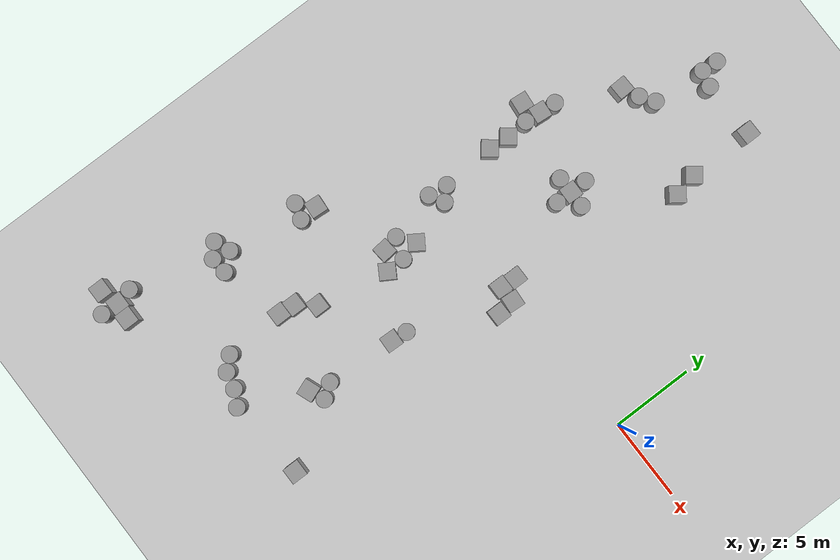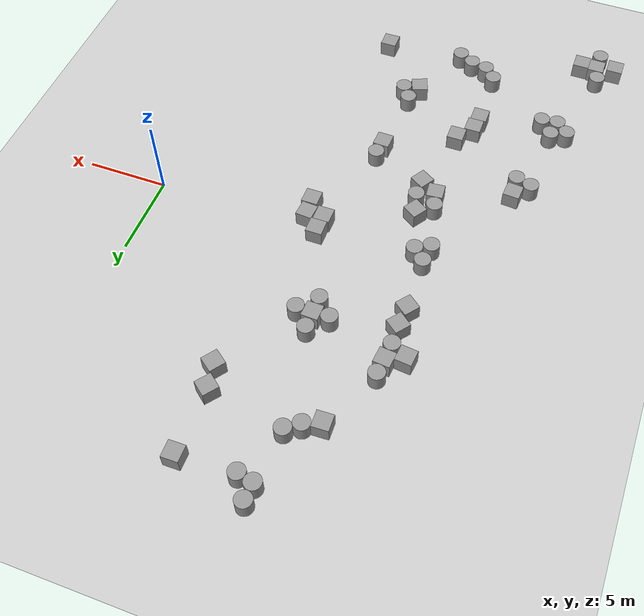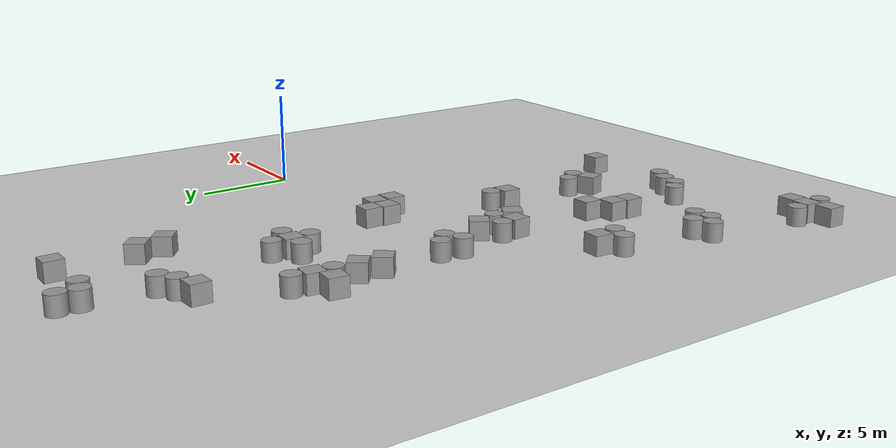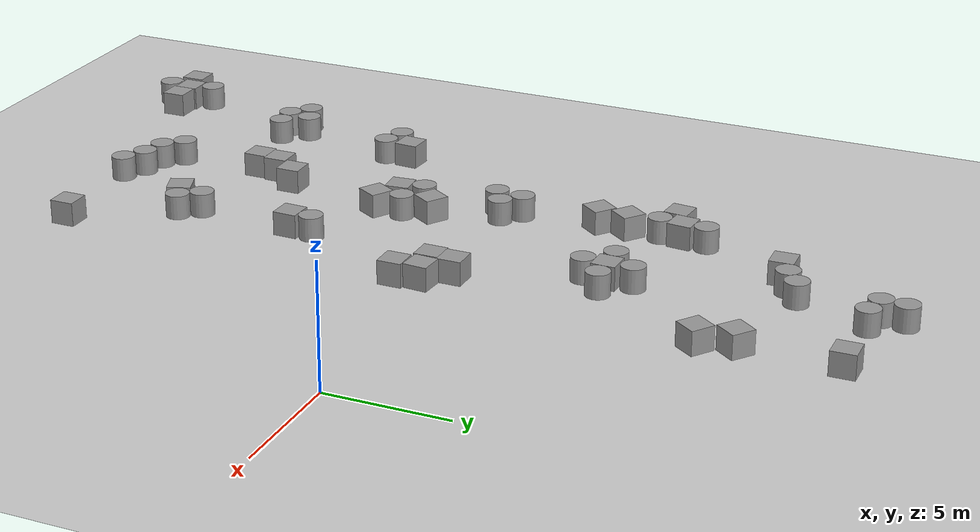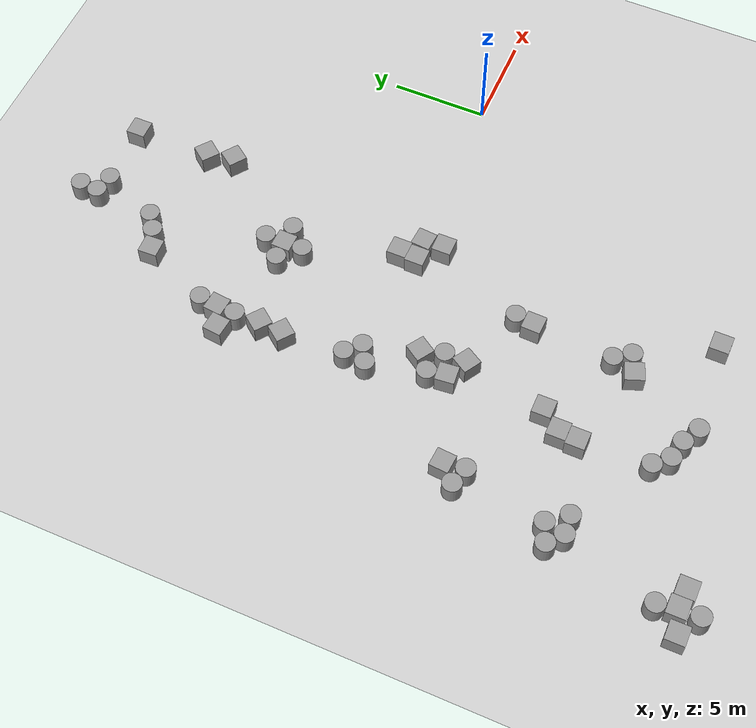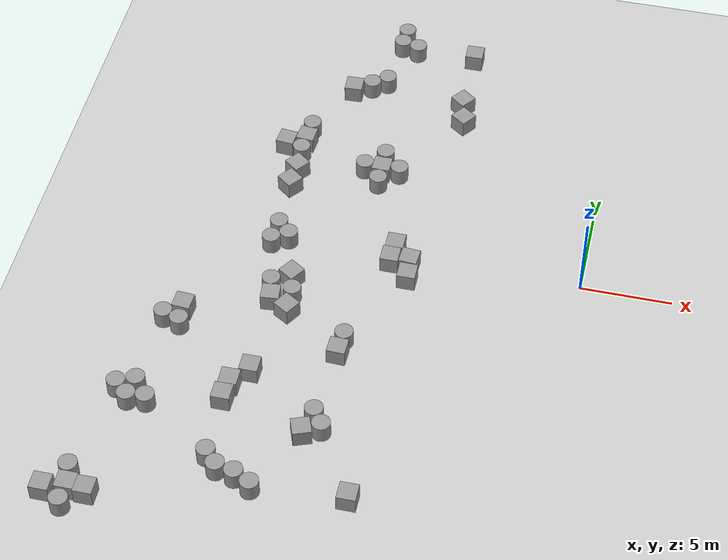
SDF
<sdf version="1.6">
 <world name="default">
  <model name="ground_plane">
   <static>1</static>
   <link name="link">
    <collision name="collision">
     <geometry><plane><normal>0 0 1</normal><size>100 100</size></plane></geometry>
     <surface><friction><ode><mu>100</mu><mu2>50</mu2></ode></friction></surface>
    </collision>
    <visual name="visual">
     <cast_shadows>0</cast_shadows>
     <geometry><plane><normal>0 0 1</normal><size>100 100</size></plane></geometry>
     <material>
      <script><uri>file://media/materials/scripts/gazebo.material</uri><name>Gazebo/Grey</name></script>
     </material>
    </visual>
   </link>
  </model>
  <model name="unit_box_8">
   <pose>-9.3394 -0.54228 0.5 0 0 -0.074039</pose>
   <link name="link">
    <inertial>
     <mass>1</mass>
     <inertia>
      <ixx>0.166667</ixx>
      <ixy>0</ixy>
      <ixz>0</ixz>
      <iyy>0.166667</iyy>
      <iyz>0</iyz>
      <izz>0.166667</izz>
     </inertia>
    </inertial>
    <collision name="collision"><geometry><box><size>1 1 1</size></box></geometry></collision>
    <visual name="visual">
     <geometry><box><size>1 1 1</size></box></geometry>
     <material>
      <script><name>Gazebo/Grey</name><uri>file://media/materials/scripts/gazebo.material</uri></script>
     </material>
    </visual>
   </link>
  </model>
  <model name="unit_box_15">
   <pose>-10.3952 -0.600275 0.5 0 0 -0.001077</pose>
   <link name="link">
    <inertial>
     <mass>1</mass>
     <inertia>
      <ixx>0.166667</ixx>
      <ixy>0</ixy>
      <ixz>0</ixz>
      <iyy>0.166667</iyy>
      <iyz>0</iyz>
      <izz>0.166667</izz>
     </inertia>
    </inertial>
    <collision name="collision"><geometry><box><size>1 1 1</size></box></geometry></collision>
    <visual name="visual">
     <geometry><box><size>1 1 1</size></box></geometry>
     <material>
      <script><name>Gazebo/Grey</name><uri>file://media/materials/scripts/gazebo.material</uri></script>
     </material>
    </visual>
   </link>
  </model>
  <model name="unit_box_19">
   <pose>-18.0601 6.84386 0.5 0 0 -0.095919</pose>
   <link name="link">
    <inertial>
     <mass>1</mass>
     <inertia>
      <ixx>0.166667</ixx>
      <ixy>0</ixy>
      <ixz>0</ixz>
      <iyy>0.166667</iyy>
      <iyz>0</iyz>
      <izz>0.166667</izz>
     </inertia>
    </inertial>
    <collision name="collision"><geometry><box><size>1 1 1</size></box></geometry></collision>
    <visual name="visual">
     <geometry><box><size>1 1 1</size></box></geometry>
     <material>
      <script><name>Gazebo/Grey</name><uri>file://media/materials/scripts/gazebo.material</uri></script>
     </material>
    </visual>
   </link>
  </model>
  <model name="unit_cylinder_16">
   <pose>-11.4365 -12.4394 0.499942 0 0 -0.038077</pose>
   <link name="link">
    <inertial>
     <mass>1</mass>
     <inertia><ixx>0.145833</ixx><ixy>0</ixy><ixz>0</ixz><iyy>0.145833</iyy><iyz>0</iyz><izz>0.125</izz></inertia>
    </inertial>
    <collision name="collision">
     <geometry><cylinder><radius>0.5</radius><length>1</length></cylinder></geometry>
    </collision>
    <visual name="visual">
     <geometry><cylinder><radius>0.5</radius><length>1</length></cylinder></geometry>
     <material>
      <script><name>Gazebo/Grey</name><uri>file://media/materials/scripts/gazebo.material</uri></script>
     </material>
    </visual>
   </link>
  </model>
  <model name="unit_cylinder_17">
   <pose>-16.3151 -3.60972 0.499942 0 0 -0.047387</pose>
   <link name="link">
    <inertial>
     <mass>1</mass>
     <inertia><ixx>0.145833</ixx><ixy>0</ixy><ixz>0</ixz><iyy>0.145833</iyy><iyz>0</iyz><izz>0.125</izz></inertia>
    </inertial>
    <collision name="collision">
     <geometry><cylinder><radius>0.5</radius><length>1</length></cylinder></geometry>
    </collision>
    <visual name="visual">
     <geometry><cylinder><radius>0.5</radius><length>1</length></cylinder></geometry>
     <material>
      <script><name>Gazebo/Grey</name><uri>file://media/materials/scripts/gazebo.material</uri></script>
     </material>
    </visual>
   </link>
  </model>
  <model name="unit_cylinder_18">
   <pose>-17.0713 -0.679046 0.499942 0 0 -0.070732</pose>
   <link name="link">
    <inertial>
     <mass>1</mass>
     <inertia><ixx>0.145833</ixx><ixy>0</ixy><ixz>0</ixz><iyy>0.145833</iyy><iyz>0</iyz><izz>0.125</izz></inertia>
    </inertial>
    <collision name="collision">
     <geometry><cylinder><radius>0.5</radius><length>1</length></cylinder></geometry>
    </collision>
    <visual name="visual">
     <geometry><cylinder><radius>0.5</radius><length>1</length></cylinder></geometry>
     <material>
      <script><name>Gazebo/Grey</name><uri>file://media/materials/scripts/gazebo.material</uri></script>
     </material>
    </visual>
   </link>
  </model>
  <model name="unit_cylinder_23">
   <pose>-15.0481 -4.04748 0.499942 0 -0 0.013755</pose>
   <link name="link">
    <inertial>
     <mass>1</mass>
     <inertia><ixx>0.145833</ixx><ixy>0</ixy><ixz>0</ixz><iyy>0.145833</iyy><iyz>0</iyz><izz>0.125</izz></inertia>
    </inertial>
    <collision name="collision">
     <geometry><cylinder><radius>0.5</radius><length>1</length></cylinder></geometry>
    </collision>
    <visual name="visual">
     <geometry><cylinder><radius>0.5</radius><length>1</length></cylinder></geometry>
     <material>
      <script><name>Gazebo/Grey</name><uri>file://media/materials/scripts/gazebo.material</uri></script>
     </material>
    </visual>
   </link>
  </model>
  <model name="unit_cylinder_24">
   <pose>-16.9163 0.507461 0.499942 0 -0 0.1365</pose>
   <link name="link">
    <inertial>
     <mass>1</mass>
     <inertia><ixx>0.145833</ixx><ixy>0</ixy><ixz>0</ixz><iyy>0.145833</iyy><iyz>0</iyz><izz>0.125</izz></inertia>
    </inertial>
    <collision name="collision">
     <geometry><cylinder><radius>0.5</radius><length>1</length></cylinder></geometry>
    </collision>
    <visual name="visual">
     <geometry><cylinder><radius>0.5</radius><length>1</length></cylinder></geometry>
     <material>
      <script><name>Gazebo/Grey</name><uri>file://media/materials/scripts/gazebo.material</uri></script>
     </material>
    </visual>
   </link>
  </model>
  <model name="unit_box_24">
   <pose>-12.3767 -12.8516 0.5 0 -0 0.358388</pose>
   <link name="link">
    <inertial>
     <mass>1</mass>
     <inertia>
      <ixx>0.166667</ixx>
      <ixy>0</ixy>
      <ixz>0</ixz>
      <iyy>0.166667</iyy>
      <iyz>0</iyz>
      <izz>0.166667</izz>
     </inertia>
    </inertial>
    <collision name="collision"><geometry><box><size>1 1 1</size></box></geometry></collision>
    <visual name="visual">
     <geometry><box><size>1 1 1</size></box></geometry>
     <material>
      <script><name>Gazebo/Grey</name><uri>file://media/materials/scripts/gazebo.material</uri></script>
     </material>
    </visual>
   </link>
  </model>
  <model name="unit_box_28_0">
   <pose>-16.7547 -10.5748 0.5 0 -0 0</pose>
   <link name="link">
    <inertial>
     <mass>1</mass>
     <inertia>
      <ixx>0.166667</ixx>
      <ixy>0</ixy>
      <ixz>0</ixz>
      <iyy>0.166667</iyy>
      <iyz>0</iyz>
      <izz>0.166667</izz>
     </inertia>
    </inertial>
    <collision name="collision"><geometry><box><size>1 1 1</size></box></geometry></collision>
    <visual name="visual">
     <geometry><box><size>1 1 1</size></box></geometry>
     <material>
      <script><name>Gazebo/Grey</name><uri>file://media/materials/scripts/gazebo.material</uri></script>
     </material>
    </visual>
   </link>
  </model>
  <model name="unit_box_28_1">
   <pose>-16.8633 -11.5756 0.5 0 -0 0</pose>
   <link name="link">
    <inertial>
     <mass>1</mass>
     <inertia>
      <ixx>0.166667</ixx>
      <ixy>0</ixy>
      <ixz>0</ixz>
      <iyy>0.166667</iyy>
      <iyz>0</iyz>
      <izz>0.166667</izz>
     </inertia>
    </inertial>
    <collision name="collision"><geometry><box><size>1 1 1</size></box></geometry></collision>
    <visual name="visual">
     <geometry><box><size>1 1 1</size></box></geometry>
     <material>
      <script><name>Gazebo/Grey</name><uri>file://media/materials/scripts/gazebo.material</uri></script>
     </material>
    </visual>
   </link>
  </model>
  <model name="unit_cylinder_27">
   <pose>-16.0304 -15.9217 0.499942 0 0 -4.4e-05</pose>
   <link name="link">
    <inertial>
     <mass>1</mass>
     <inertia><ixx>0.145833</ixx><ixy>0</ixy><ixz>0</ixz><iyy>0.145833</iyy><iyz>0</iyz><izz>0.125</izz></inertia>
    </inertial>
    <collision name="collision">
     <geometry><cylinder><radius>0.5</radius><length>1</length></cylinder></geometry>
    </collision>
    <visual name="visual">
     <geometry><cylinder><radius>0.5</radius><length>1</length></cylinder></geometry>
     <material>
      <script><name>Gazebo/Grey</name><uri>file://media/materials/scripts/gazebo.material</uri></script>
     </material>
    </visual>
   </link>
  </model>
  <model name="unit_cylinder_28">
   <pose>-15.0122 -16.1585 0.499942 0 -0 0</pose>
   <link name="link">
    <inertial>
     <mass>1</mass>
     <inertia><ixx>0.145833</ixx><ixy>0</ixy><ixz>0</ixz><iyy>0.145833</iyy><iyz>0</iyz><izz>0.125</izz></inertia>
    </inertial>
    <collision name="collision">
     <geometry><cylinder><radius>0.5</radius><length>1</length></cylinder></geometry>
    </collision>
    <visual name="visual">
     <geometry><cylinder><radius>0.5</radius><length>1</length></cylinder></geometry>
     <material>
      <script><name>Gazebo/Grey</name><uri>file://media/materials/scripts/gazebo.material</uri></script>
     </material>
    </visual>
   </link>
  </model>
  <model name="unit_cylinder_29">
   <pose>-14.0775 -16.6533 0.499942 0 -0 0</pose>
   <link name="link">
    <inertial>
     <mass>1</mass>
     <inertia><ixx>0.145833</ixx><ixy>0</ixy><ixz>0</ixz><iyy>0.145833</iyy><iyz>0</iyz><izz>0.125</izz></inertia>
    </inertial>
    <collision name="collision">
     <geometry><cylinder><radius>0.5</radius><length>1</length></cylinder></geometry>
    </collision>
    <visual name="visual">
     <geometry><cylinder><radius>0.5</radius><length>1</length></cylinder></geometry>
     <material>
      <script><name>Gazebo/Grey</name><uri>file://media/materials/scripts/gazebo.material</uri></script>
     </material>
    </visual>
   </link>
  </model>
  <model name="unit_cylinder_31">
   <pose>-12.0079 -11.6186 0.499942 0 0 -5.3e-05</pose>
   <link name="link">
    <inertial>
     <mass>1</mass>
     <inertia><ixx>0.145833</ixx><ixy>0</ixy><ixz>0</ixz><iyy>0.145833</iyy><iyz>0</iyz><izz>0.125</izz></inertia>
    </inertial>
    <collision name="collision">
     <geometry><cylinder><radius>0.5</radius><length>1</length></cylinder></geometry>
    </collision>
    <visual name="visual">
     <geometry><cylinder><radius>0.5</radius><length>1</length></cylinder></geometry>
     <material>
      <script><name>Gazebo/Grey</name><uri>file://media/materials/scripts/gazebo.material</uri></script>
     </material>
    </visual>
   </link>
  </model>
  <model name="unit_box_28">
   <pose>-15.9198 -9.53398 0.5 0 -0 0</pose>
   <link name="link">
    <inertial>
     <mass>1</mass>
     <inertia>
      <ixx>0.166667</ixx>
      <ixy>0</ixy>
      <ixz>0</ixz>
      <iyy>0.166667</iyy>
      <iyz>0</iyz>
      <izz>0.166667</izz>
     </inertia>
    </inertial>
    <collision name="collision"><geometry><box><size>1 1 1</size></box></geometry></collision>
    <visual name="visual">
     <geometry><box><size>1 1 1</size></box></geometry>
     <material>
      <script><name>Gazebo/Grey</name><uri>file://media/materials/scripts/gazebo.material</uri></script>
     </material>
    </visual>
   </link>
  </model>
  <model name="unit_box_34">
   <pose>-9.24528 -1.60585 0.5 0 -0 0</pose>
   <link name="link">
    <inertial>
     <mass>1</mass>
     <inertia>
      <ixx>0.166667</ixx>
      <ixy>0</ixy>
      <ixz>0</ixz>
      <iyy>0.166667</iyy>
      <iyz>0</iyz>
      <izz>0.166667</izz>
     </inertia>
    </inertial>
    <collision name="collision"><geometry><box><size>1 1 1</size></box></geometry></collision>
    <visual name="visual">
     <geometry><box><size>1 1 1</size></box></geometry>
     <material>
      <script><name>Gazebo/Grey</name><uri>file://media/materials/scripts/gazebo.material</uri></script>
     </material>
    </visual>
   </link>
  </model>
  <model name="unit_box_37">
   <pose>-12.2689 5.91862 0.5 0 0 -0.024915</pose>
   <link name="link">
    <inertial>
     <mass>1</mass>
     <inertia>
      <ixx>0.166667</ixx>
      <ixy>0</ixy>
      <ixz>0</ixz>
      <iyy>0.166667</iyy>
      <iyz>0</iyz>
      <izz>0.166667</izz>
     </inertia>
    </inertial>
    <collision name="collision"><geometry><box><size>1 1 1</size></box></geometry></collision>
    <visual name="visual">
     <geometry><box><size>1 1 1</size></box></geometry>
     <material>
      <script><name>Gazebo/Grey</name><uri>file://media/materials/scripts/gazebo.material</uri></script>
     </material>
    </visual>
   </link>
  </model>
  <model name="unit_cylinder_32">
   <pose>-13.2104 16.2333 0.499942 0 -0 0.006978</pose>
   <link name="link">
    <inertial>
     <mass>1</mass>
     <inertia><ixx>0.145833</ixx><ixy>0</ixy><ixz>0</ixz><iyy>0.145833</iyy><iyz>0</iyz><izz>0.125</izz></inertia>
    </inertial>
    <collision name="collision">
     <geometry><cylinder><radius>0.5</radius><length>1</length></cylinder></geometry>
    </collision>
    <visual name="visual">
     <geometry><cylinder><radius>0.5</radius><length>1</length></cylinder></geometry>
     <material>
      <script><name>Gazebo/Grey</name><uri>file://media/materials/scripts/gazebo.material</uri></script>
     </material>
    </visual>
   </link>
  </model>
  <model name="unit_cylinder_33">
   <pose>-13.1457 17.2313 0.499942 0 0 -0.001377</pose>
   <link name="link">
    <inertial>
     <mass>1</mass>
     <inertia><ixx>0.145833</ixx><ixy>0</ixy><ixz>0</ixz><iyy>0.145833</iyy><iyz>0</iyz><izz>0.125</izz></inertia>
    </inertial>
    <collision name="collision">
     <geometry><cylinder><radius>0.5</radius><length>1</length></cylinder></geometry>
    </collision>
    <visual name="visual">
     <geometry><cylinder><radius>0.5</radius><length>1</length></cylinder></geometry>
     <material>
      <script><name>Gazebo/Grey</name><uri>file://media/materials/scripts/gazebo.material</uri></script>
     </material>
    </visual>
   </link>
  </model>
  <model name="unit_cylinder_8_5">
   <pose>-11.2686 5.90923 0.499942 0 0 -0.009421</pose>
   <link name="link">
    <inertial>
     <mass>1</mass>
     <inertia><ixx>0.145833</ixx><ixy>0</ixy><ixz>0</ixz><iyy>0.145833</iyy><iyz>0</iyz><izz>0.125</izz></inertia>
    </inertial>
    <collision name="collision">
     <geometry><cylinder><radius>0.5</radius><length>1</length></cylinder></geometry>
    </collision>
    <visual name="visual">
     <geometry><cylinder><radius>0.5</radius><length>1</length></cylinder></geometry>
     <material>
      <script><name>Gazebo/Grey</name><uri>file://media/materials/scripts/gazebo.material</uri></script>
     </material>
    </visual>
   </link>
  </model>
  <model name="unit_cylinder_8_6">
   <pose>-13.2697 5.89996 0.499942 0 0 -0.00064</pose>
   <link name="link">
    <inertial>
     <mass>1</mass>
     <inertia><ixx>0.145833</ixx><ixy>0</ixy><ixz>0</ixz><iyy>0.145833</iyy><iyz>0</iyz><izz>0.125</izz></inertia>
    </inertial>
    <collision name="collision">
     <geometry><cylinder><radius>0.5</radius><length>1</length></cylinder></geometry>
    </collision>
    <visual name="visual">
     <geometry><cylinder><radius>0.5</radius><length>1</length></cylinder></geometry>
     <material>
      <script><name>Gazebo/Grey</name><uri>file://media/materials/scripts/gazebo.material</uri></script>
     </material>
    </visual>
   </link>
  </model>
  <model name="unit_cylinder_8_7">
   <pose>-12.2859 4.91815 0.499942 0 -0 0.004002</pose>
   <link name="link">
    <inertial>
     <mass>1</mass>
     <inertia><ixx>0.145833</ixx><ixy>0</ixy><ixz>0</ixz><iyy>0.145833</iyy><iyz>0</iyz><izz>0.125</izz></inertia>
    </inertial>
    <collision name="collision">
     <geometry><cylinder><radius>0.5</radius><length>1</length></cylinder></geometry>
    </collision>
    <visual name="visual">
     <geometry><cylinder><radius>0.5</radius><length>1</length></cylinder></geometry>
     <material>
      <script><name>Gazebo/Grey</name><uri>file://media/materials/scripts/gazebo.material</uri></script>
     </material>
    </visual>
   </link>
  </model>
  <model name="unit_cylinder_8_8">
   <pose>-12.2792 6.95978 0.499942 0 -0 0</pose>
   <link name="link">
    <inertial>
     <mass>1</mass>
     <inertia><ixx>0.145833</ixx><ixy>0</ixy><ixz>0</ixz><iyy>0.145833</iyy><iyz>0</iyz><izz>0.125</izz></inertia>
    </inertial>
    <collision name="collision">
     <geometry><cylinder><radius>0.5</radius><length>1</length></cylinder></geometry>
    </collision>
    <visual name="visual">
     <geometry><cylinder><radius>0.5</radius><length>1</length></cylinder></geometry>
     <material>
      <script><name>Gazebo/Grey</name><uri>file://media/materials/scripts/gazebo.material</uri></script>
     </material>
    </visual>
   </link>
  </model>
  <model name="unit_box_17">
   <pose>-8.79856 16.1214 0.5 0 -0 0.008021</pose>
   <link name="link">
    <inertial>
     <mass>1</mass>
     <inertia>
      <ixx>0.166667</ixx>
      <ixy>0</ixy>
      <ixz>0</ixz>
      <iyy>0.166667</iyy>
      <iyz>0</iyz>
      <izz>0.166667</izz>
     </inertia>
    </inertial>
    <collision name="collision"><geometry><box><size>1 1 1</size></box></geometry></collision>
    <visual name="visual">
     <geometry><box><size>1 1 1</size></box></geometry>
     <material>
      <script><name>Gazebo/Grey</name><uri>file://media/materials/scripts/gazebo.material</uri></script>
     </material>
    </visual>
   </link>
  </model>
  <model name="unit_cylinder_9_0">
   <pose>-14.2664 12.4174 0.499942 0 0 -0.02041</pose>
   <link name="link">
    <inertial>
     <mass>1</mass>
     <inertia><ixx>0.145833</ixx><ixy>0</ixy><ixz>0</ixz><iyy>0.145833</iyy><iyz>0</iyz><izz>0.125</izz></inertia>
    </inertial>
    <collision name="collision">
     <geometry><cylinder><radius>0.5</radius><length>1</length></cylinder></geometry>
    </collision>
    <visual name="visual">
     <geometry><cylinder><radius>0.5</radius><length>1</length></cylinder></geometry>
     <material>
      <script><name>Gazebo/Grey</name><uri>file://media/materials/scripts/gazebo.material</uri></script>
     </material>
    </visual>
   </link>
  </model>
  <model name="unit_cylinder_9_1">
   <pose>-13.4507 12.9959 0.499942 0 0 -0.001885</pose>
   <link name="link">
    <inertial>
     <mass>1</mass>
     <inertia><ixx>0.145833</ixx><ixy>0</ixy><ixz>0</ixz><iyy>0.145833</iyy><iyz>0</iyz><izz>0.125</izz></inertia>
    </inertial>
    <collision name="collision">
     <geometry><cylinder><radius>0.5</radius><length>1</length></cylinder></geometry>
    </collision>
    <visual name="visual">
     <geometry><cylinder><radius>0.5</radius><length>1</length></cylinder></geometry>
     <material>
      <script><name>Gazebo/Grey</name><uri>file://media/materials/scripts/gazebo.material</uri></script>
     </material>
    </visual>
   </link>
  </model>
  <model name="unit_cylinder_9">
   <pose>-16.1971 -0.193458 0.499942 0 -0 0.065116</pose>
   <link name="link">
    <inertial>
     <mass>1</mass>
     <inertia><ixx>0.145833</ixx><ixy>0</ixy><ixz>0</ixz><iyy>0.145833</iyy><iyz>0</iyz><izz>0.125</izz></inertia>
    </inertial>
    <collision name="collision">
     <geometry><cylinder><radius>0.5</radius><length>1</length></cylinder></geometry>
    </collision>
    <visual name="visual">
     <geometry><cylinder><radius>0.5</radius><length>1</length></cylinder></geometry>
     <material>
      <script><name>Gazebo/Grey</name><uri>file://media/materials/scripts/gazebo.material</uri></script>
     </material>
    </visual>
   </link>
  </model>
  <model name="unit_cylinder_35">
   <pose>-17.0751 6.3465 0.499942 0 -0 0.114639</pose>
   <link name="link">
    <inertial>
     <mass>1</mass>
     <inertia><ixx>0.145833</ixx><ixy>0</ixy><ixz>0</ixz><iyy>0.145833</iyy><iyz>0</iyz><izz>0.125</izz></inertia>
    </inertial>
    <collision name="collision">
     <geometry><cylinder><radius>0.5</radius><length>1</length></cylinder></geometry>
    </collision>
    <visual name="visual">
     <geometry><cylinder><radius>0.5</radius><length>1</length></cylinder></geometry>
     <material>
      <script><name>Gazebo/Grey</name><uri>file://media/materials/scripts/gazebo.material</uri></script>
     </material>
    </visual>
   </link>
  </model>
  <model name="unit_box_3">
   <pose>-17.0037 7.34463 0.5 0 0 -0.090483</pose>
   <link name="link">
    <inertial>
     <mass>1</mass>
     <inertia>
      <ixx>0.166667</ixx>
      <ixy>0</ixy>
      <ixz>0</ixz>
      <iyy>0.166667</iyy>
      <iyz>0</iyz>
      <izz>0.166667</izz>
     </inertia>
    </inertial>
    <collision name="collision"><geometry><box><size>1 1 1</size></box></geometry></collision>
    <visual name="visual">
     <geometry><box><size>1 1 1</size></box></geometry>
     <material>
      <script><name>Gazebo/Grey</name><uri>file://media/materials/scripts/gazebo.material</uri></script>
     </material>
    </visual>
   </link>
  </model>
  <model name="unit_cylinder_36">
   <pose>-16.9095 8.34087 0.499942 0 -0 0.021385</pose>
   <link name="link">
    <inertial>
     <mass>1</mass>
     <inertia><ixx>0.145833</ixx><ixy>0</ixy><ixz>0</ixz><iyy>0.145833</iyy><iyz>0</iyz><izz>0.125</izz></inertia>
    </inertial>
    <collision name="collision">
     <geometry><cylinder><radius>0.5</radius><length>1</length></cylinder></geometry>
    </collision>
    <visual name="visual">
     <geometry><cylinder><radius>0.5</radius><length>1</length></cylinder></geometry>
     <material>
      <script><name>Gazebo/Grey</name><uri>file://media/materials/scripts/gazebo.material</uri></script>
     </material>
    </visual>
   </link>
  </model>
  <model name="unit_box_36">
   <pose>-9.17975 -16.2199 0.5 0 -0 0</pose>
   <link name="link">
    <inertial>
     <mass>1</mass>
     <inertia>
      <ixx>0.166667</ixx>
      <ixy>0</ixy>
      <ixz>0</ixz>
      <iyy>0.166667</iyy>
      <iyz>0</iyz>
      <izz>0.166667</izz>
     </inertia>
    </inertial>
    <collision name="collision"><geometry><box><size>1 1 1</size></box></geometry></collision>
    <visual name="visual">
     <geometry><box><size>1 1 1</size></box></geometry>
     <material>
      <script><name>Gazebo/Grey</name><uri>file://media/materials/scripts/gazebo.material</uri></script>
     </material>
    </visual>
   </link>
  </model>
  <model name="unit_cylinder_5">
   <pose>-16.7148 -15.1926 0.499942 0 0 -0.000128</pose>
   <link name="link">
    <inertial>
     <mass>1</mass>
     <inertia><ixx>0.145833</ixx><ixy>0</ixy><ixz>0</ixz><iyy>0.145833</iyy><iyz>0</iyz><izz>0.125</izz></inertia>
    </inertial>
    <collision name="collision">
     <geometry><cylinder><radius>0.5</radius><length>1</length></cylinder></geometry>
    </collision>
    <visual name="visual">
     <geometry><cylinder><radius>0.5</radius><length>1</length></cylinder></geometry>
     <material>
      <script><name>Gazebo/Grey</name><uri>file://media/materials/scripts/gazebo.material</uri></script>
     </material>
    </visual>
   </link>
  </model>
  <model name="unit_box_40">
   <pose>-16.0941 -4.59457 0.5 0 -0 0.094317</pose>
   <link name="link">
    <inertial>
     <mass>1</mass>
     <inertia>
      <ixx>0.166667</ixx>
      <ixy>0</ixy>
      <ixz>0</ixz>
      <iyy>0.166667</iyy>
      <iyz>0</iyz>
      <izz>0.166667</izz>
     </inertia>
    </inertial>
    <collision name="collision"><geometry><box><size>1 1 1</size></box></geometry></collision>
    <visual name="visual">
     <geometry><box><size>1 1 1</size></box></geometry>
     <material>
      <script><name>Gazebo/Grey</name><uri>file://media/materials/scripts/gazebo.material</uri></script>
     </material>
    </visual>
   </link>
  </model>
  <model name="unit_box_41">
   <pose>-15.251 11.9682 0.5 0 -0 0.035971</pose>
   <link name="link">
    <inertial>
     <mass>1</mass>
     <inertia>
      <ixx>0.166667</ixx>
      <ixy>0</ixy>
      <ixz>0</ixz>
      <iyy>0.166667</iyy>
      <iyz>0</iyz>
      <izz>0.166667</izz>
     </inertia>
    </inertial>
    <collision name="collision"><geometry><box><size>1 1 1</size></box></geometry></collision>
    <visual name="visual">
     <geometry><box><size>1 1 1</size></box></geometry>
     <material>
      <script><name>Gazebo/Grey</name><uri>file://media/materials/scripts/gazebo.material</uri></script>
     </material>
    </visual>
   </link>
  </model>
  <model name="unit_box_44">
   <pose>-10.3091 0.399738 0.5 0 0 -0.001056</pose>
   <link name="link">
    <inertial>
     <mass>1</mass>
     <inertia>
      <ixx>0.166667</ixx>
      <ixy>0</ixy>
      <ixz>0</ixz>
      <iyy>0.166667</iyy>
      <iyz>0</iyz>
      <izz>0.166667</izz>
     </inertia>
    </inertial>
    <collision name="collision"><geometry><box><size>1 1 1</size></box></geometry></collision>
    <visual name="visual">
     <geometry><box><size>1 1 1</size></box></geometry>
     <material>
      <script><name>Gazebo/Grey</name><uri>file://media/materials/scripts/gazebo.material</uri></script>
     </material>
    </visual>
   </link>
  </model>
  <model name="unit_box_18_clone_clone">
   <pose>-8.75888 12.1181 0.5 0 -0 0.912679</pose>
   <link name="link">
    <inertial>
     <mass>1</mass>
     <inertia>
      <ixx>0.166667</ixx>
      <ixy>0</ixy>
      <ixz>0</ixz>
      <iyy>0.166667</iyy>
      <iyz>0</iyz>
      <izz>0.166667</izz>
     </inertia>
    </inertial>
    <collision name="collision"><geometry><box><size>1 1 1</size></box></geometry></collision>
    <visual name="visual">
     <geometry><box><size>1 1 1</size></box></geometry>
     <material>
      <script><name>Gazebo/Grey</name><uri>file://media/materials/scripts/gazebo.material</uri></script>
     </material>
    </visual>
   </link>
  </model>
  <model name="unit_box_18_clone_clone_clone">
   <pose>-16.9954 5.03729 0.5 0 -0 0.912679</pose>
   <link name="link">
    <inertial>
     <mass>1</mass>
     <inertia>
      <ixx>0.166667</ixx>
      <ixy>0</ixy>
      <ixz>0</ixz>
      <iyy>0.166667</iyy>
      <iyz>0</iyz>
      <izz>0.166667</izz>
     </inertia>
    </inertial>
    <collision name="collision"><geometry><box><size>1 1 1</size></box></geometry></collision>
    <visual name="visual">
     <geometry><box><size>1 1 1</size></box></geometry>
     <material>
      <script><name>Gazebo/Grey</name><uri>file://media/materials/scripts/gazebo.material</uri></script>
     </material>
    </visual>
   </link>
  </model>
  <model name="unit_box_18_clone_clone_clone_0">
   <pose>-17.0939 3.76744 0.5 0 -0 0.912679</pose>
   <link name="link">
    <inertial>
     <mass>1</mass>
     <inertia>
      <ixx>0.166667</ixx>
      <ixy>0</ixy>
      <ixz>0</ixz>
      <iyy>0.166667</iyy>
      <iyz>0</iyz>
      <izz>0.166667</izz>
     </inertia>
    </inertial>
    <collision name="collision"><geometry><box><size>1 1 1</size></box></geometry></collision>
    <visual name="visual">
     <geometry><box><size>1 1 1</size></box></geometry>
     <material>
      <script><name>Gazebo/Grey</name><uri>file://media/materials/scripts/gazebo.material</uri></script>
     </material>
    </visual>
   </link>
  </model>
  <model name="unit_box_18_clone_clone_clone_1">
   <pose>-15.0497 -5.20312 0.5 0 -0 1.02917</pose>
   <link name="link">
    <inertial>
     <mass>1</mass>
     <inertia>
      <ixx>0.166667</ixx>
      <ixy>0</ixy>
      <ixz>0</ixz>
      <iyy>0.166667</iyy>
      <iyz>0</iyz>
      <izz>0.166667</izz>
     </inertia>
    </inertial>
    <collision name="collision"><geometry><box><size>1 1 1</size></box></geometry></collision>
    <visual name="visual">
     <geometry><box><size>1 1 1</size></box></geometry>
     <material>
      <script><name>Gazebo/Grey</name><uri>file://media/materials/scripts/gazebo.material</uri></script>
     </material>
    </visual>
   </link>
  </model>
  <model name="unit_box_18_clone_clone_clone_1_clone">
   <pose>-15.3545 -2.88193 0.5 0 -0 0.993844</pose>
   <link name="link">
    <inertial>
     <mass>1</mass>
     <inertia>
      <ixx>0.166667</ixx>
      <ixy>0</ixy>
      <ixz>0</ixz>
      <iyy>0.166667</iyy>
      <iyz>0</iyz>
      <izz>0.166667</izz>
     </inertia>
    </inertial>
    <collision name="collision"><geometry><box><size>1 1 1</size></box></geometry></collision>
    <visual name="visual">
     <geometry><box><size>1 1 1</size></box></geometry>
     <material>
      <script><name>Gazebo/Grey</name><uri>file://media/materials/scripts/gazebo.material</uri></script>
     </material>
    </visual>
   </link>
  </model>
  <model name="unit_cylinder_11">
   <pose>-12.2364 16.0064 0.499942 0 0 -5.6e-05</pose>
   <link name="link">
    <inertial>
     <mass>1</mass>
     <inertia><ixx>0.145833</ixx><ixy>0</ixy><ixz>0</ixz><iyy>0.145833</iyy><iyz>0</iyz><izz>0.125</izz></inertia>
    </inertial>
    <collision name="collision">
     <geometry><cylinder><radius>0.5</radius><length>1</length></cylinder></geometry>
    </collision>
    <visual name="visual">
     <geometry><cylinder><radius>0.5</radius><length>1</length></cylinder></geometry>
     <material>
      <script><name>Gazebo/Grey</name><uri>file://media/materials/scripts/gazebo.material</uri></script>
     </material>
    </visual>
   </link>
  </model>
  <model name="unit_box_18_clone_clone_0_clone_1">
   <pose>-8.46867 10.6854 0.5 0 -0 0.943997</pose>
   <link name="link">
    <inertial>
     <mass>1</mass>
     <inertia>
      <ixx>0.166667</ixx>
      <ixy>0</ixy>
      <ixz>0</ixz>
      <iyy>0.166667</iyy>
      <iyz>0</iyz>
      <izz>0.166667</izz>
     </inertia>
    </inertial>
    <collision name="collision"><geometry><box><size>1 1 1</size></box></geometry></collision>
    <visual name="visual">
     <geometry><box><size>1 1 1</size></box></geometry>
     <material>
      <script><name>Gazebo/Grey</name><uri>file://media/materials/scripts/gazebo.material</uri></script>
     </material>
    </visual>
   </link>
  </model>
  <model name="unit_cylinder_42">
   <pose>-11.6372 -6.42246 0.499942 0 -0 0.011997</pose>
   <link name="link">
    <inertial>
     <mass>1</mass>
     <inertia><ixx>0.145833</ixx><ixy>0</ixy><ixz>0</ixz><iyy>0.145833</iyy><iyz>0</iyz><izz>0.125</izz></inertia>
    </inertial>
    <collision name="collision">
     <geometry><cylinder><radius>0.5</radius><length>1</length></cylinder></geometry>
    </collision>
    <visual name="visual">
     <geometry><cylinder><radius>0.5</radius><length>1</length></cylinder></geometry>
     <material>
      <script><name>Gazebo/Grey</name><uri>file://media/materials/scripts/gazebo.material</uri></script>
     </material>
    </visual>
   </link>
  </model>
  <model name="unit_cylinder_54">
   <pose>-20.4041 -7.33295 0.499942 0 -0 0.059086</pose>
   <link name="link">
    <inertial>
     <mass>1</mass>
     <inertia><ixx>0.145833</ixx><ixy>0</ixy><ixz>0</ixz><iyy>0.145833</iyy><iyz>0</iyz><izz>0.125</izz></inertia>
    </inertial>
    <collision name="collision">
     <geometry><cylinder><radius>0.5</radius><length>1</length></cylinder></geometry>
    </collision>
    <visual name="visual">
     <geometry><cylinder><radius>0.5</radius><length>1</length></cylinder></geometry>
     <material>
      <script><name>Gazebo/Grey</name><uri>file://media/materials/scripts/gazebo.material</uri></script>
     </material>
    </visual>
   </link>
  </model>
  <model name="unit_box_33">
   <pose>-20.4823 -6.2023 0.5 0 0 -0.06912</pose>
   <link name="link">
    <inertial>
     <mass>1</mass>
     <inertia>
      <ixx>0.166667</ixx>
      <ixy>0</ixy>
      <ixz>0</ixz>
      <iyy>0.166667</iyy>
      <iyz>0</iyz>
      <izz>0.166667</izz>
     </inertia>
    </inertial>
    <collision name="collision"><geometry><box><size>1 1 1</size></box></geometry></collision>
    <visual name="visual">
     <geometry><box><size>1 1 1</size></box></geometry>
     <material>
      <script><name>Gazebo/Grey</name><uri>file://media/materials/scripts/gazebo.material</uri></script>
     </material>
    </visual>
   </link>
  </model>
  <model name="unit_cylinder_55">
   <pose>-21.3582 -7.03326 0.499942 0 0 -0.011101</pose>
   <link name="link">
    <inertial>
     <mass>1</mass>
     <inertia><ixx>0.145833</ixx><ixy>0</ixy><ixz>0</ixz><iyy>0.145833</iyy><iyz>0</iyz><izz>0.125</izz></inertia>
    </inertial>
    <collision name="collision">
     <geometry><cylinder><radius>0.5</radius><length>1</length></cylinder></geometry>
    </collision>
    <visual name="visual">
     <geometry><cylinder><radius>0.5</radius><length>1</length></cylinder></geometry>
     <material>
      <script><name>Gazebo/Grey</name><uri>file://media/materials/scripts/gazebo.material</uri></script>
     </material>
    </visual>
   </link>
  </model>
  <model name="unit_cylinder_56">
   <pose>-21.6577 -12.6908 0.499942 0 -0 0.00449</pose>
   <link name="link">
    <inertial>
     <mass>1</mass>
     <inertia><ixx>0.145833</ixx><ixy>0</ixy><ixz>0</ixz><iyy>0.145833</iyy><iyz>0</iyz><izz>0.125</izz></inertia>
    </inertial>
    <collision name="collision">
     <geometry><cylinder><radius>0.5</radius><length>1</length></cylinder></geometry>
    </collision>
    <visual name="visual">
     <geometry><cylinder><radius>0.5</radius><length>1</length></cylinder></geometry>
     <material>
      <script><name>Gazebo/Grey</name><uri>file://media/materials/scripts/gazebo.material</uri></script>
     </material>
    </visual>
   </link>
  </model>
  <model name="unit_cylinder_57">
   <pose>-21.4574 -11.6357 0.499942 0 -0 0.003335</pose>
   <link name="link">
    <inertial>
     <mass>1</mass>
     <inertia><ixx>0.145833</ixx><ixy>0</ixy><ixz>0</ixz><iyy>0.145833</iyy><iyz>0</iyz><izz>0.125</izz></inertia>
    </inertial>
    <collision name="collision">
     <geometry><cylinder><radius>0.5</radius><length>1</length></cylinder></geometry>
    </collision>
    <visual name="visual">
     <geometry><cylinder><radius>0.5</radius><length>1</length></cylinder></geometry>
     <material>
      <script><name>Gazebo/Grey</name><uri>file://media/materials/scripts/gazebo.material</uri></script>
     </material>
    </visual>
   </link>
  </model>
  <model name="unit_cylinder_58">
   <pose>-22.4085 -12.0301 0.499942 0 0 -0.004725</pose>
   <link name="link">
    <inertial>
     <mass>1</mass>
     <inertia><ixx>0.145833</ixx><ixy>0</ixy><ixz>0</ixz><iyy>0.145833</iyy><iyz>0</iyz><izz>0.125</izz></inertia>
    </inertial>
    <collision name="collision">
     <geometry><cylinder><radius>0.5</radius><length>1</length></cylinder></geometry>
    </collision>
    <visual name="visual">
     <geometry><cylinder><radius>0.5</radius><length>1</length></cylinder></geometry>
     <material>
      <script><name>Gazebo/Grey</name><uri>file://media/materials/scripts/gazebo.material</uri></script>
     </material>
    </visual>
   </link>
  </model>
  <model name="unit_cylinder_59">
   <pose>-20.6606 -12.6141 0.499942 0 0 -0.006446</pose>
   <link name="link">
    <inertial>
     <mass>1</mass>
     <inertia><ixx>0.145833</ixx><ixy>0</ixy><ixz>0</ixz><iyy>0.145833</iyy><iyz>0</iyz><izz>0.125</izz></inertia>
    </inertial>
    <collision name="collision">
     <geometry><cylinder><radius>0.5</radius><length>1</length></cylinder></geometry>
    </collision>
    <visual name="visual">
     <geometry><cylinder><radius>0.5</radius><length>1</length></cylinder></geometry>
     <material>
      <script><name>Gazebo/Grey</name><uri>file://media/materials/scripts/gazebo.material</uri></script>
     </material>
    </visual>
   </link>
  </model>
  <model name="unit_box_51">
   <pose>-22.9294 -18.5322 0.5 0 0 -0.000273</pose>
   <link name="link">
    <inertial>
     <mass>1</mass>
     <inertia>
      <ixx>0.166667</ixx>
      <ixy>0</ixy>
      <ixz>0</ixz>
      <iyy>0.166667</iyy>
      <iyz>0</iyz>
      <izz>0.166667</izz>
     </inertia>
    </inertial>
    <collision name="collision"><geometry><box><size>1 1 1</size></box></geometry></collision>
    <visual name="visual">
     <geometry><box><size>1 1 1</size></box></geometry>
     <material>
      <script><name>Gazebo/Grey</name><uri>file://media/materials/scripts/gazebo.material</uri></script>
     </material>
    </visual>
   </link>
  </model>
  <model name="unit_cylinder_64">
   <pose>-23.1602 -17.5184 0.499942 0 -0 0</pose>
   <link name="link">
    <inertial>
     <mass>1</mass>
     <inertia><ixx>0.145833</ixx><ixy>0</ixy><ixz>0</ixz><iyy>0.145833</iyy><iyz>0</iyz><izz>0.125</izz></inertia>
    </inertial>
    <collision name="collision">
     <geometry><cylinder><radius>0.5</radius><length>1</length></cylinder></geometry>
    </collision>
    <visual name="visual">
     <geometry><cylinder><radius>0.5</radius><length>1</length></cylinder></geometry>
     <material>
      <script><name>Gazebo/Grey</name><uri>file://media/materials/scripts/gazebo.material</uri></script>
     </material>
    </visual>
   </link>
  </model>
  <model name="unit_cylinder_65">
   <pose>-22.9683 -19.5983 0.499942 0 -0 0</pose>
   <link name="link">
    <inertial>
     <mass>1</mass>
     <inertia><ixx>0.145833</ixx><ixy>0</ixy><ixz>0</ixz><iyy>0.145833</iyy><iyz>0</iyz><izz>0.125</izz></inertia>
    </inertial>
    <collision name="collision">
     <geometry><cylinder><radius>0.5</radius><length>1</length></cylinder></geometry>
    </collision>
    <visual name="visual">
     <geometry><cylinder><radius>0.5</radius><length>1</length></cylinder></geometry>
     <material>
      <script><name>Gazebo/Grey</name><uri>file://media/materials/scripts/gazebo.material</uri></script>
     </material>
    </visual>
   </link>
  </model>
  <model name="unit_box_52">
   <pose>-21.9293 -18.6174 0.5 0 0 -0.000274</pose>
   <link name="link">
    <inertial>
     <mass>1</mass>
     <inertia>
      <ixx>0.166667</ixx>
      <ixy>0</ixy>
      <ixz>0</ixz>
      <iyy>0.166667</iyy>
      <iyz>0</iyz>
      <izz>0.166667</izz>
     </inertia>
    </inertial>
    <collision name="collision"><geometry><box><size>1 1 1</size></box></geometry></collision>
    <visual name="visual">
     <geometry><box><size>1 1 1</size></box></geometry>
     <material>
      <script><name>Gazebo/Grey</name><uri>file://media/materials/scripts/gazebo.material</uri></script>
     </material>
    </visual>
   </link>
  </model>
  <model name="unit_box_53">
   <pose>-24.1125 -18.8694 0.5 0 -0 0</pose>
   <link name="link">
    <inertial>
     <mass>1</mass>
     <inertia>
      <ixx>0.166667</ixx>
      <ixy>0</ixy>
      <ixz>0</ixz>
      <iyy>0.166667</iyy>
      <iyz>0</iyz>
      <izz>0.166667</izz>
     </inertia>
    </inertial>
    <collision name="collision"><geometry><box><size>1 1 1</size></box></geometry></collision>
    <visual name="visual">
     <geometry><box><size>1 1 1</size></box></geometry>
     <material>
      <script><name>Gazebo/Grey</name><uri>file://media/materials/scripts/gazebo.material</uri></script>
     </material>
    </visual>
   </link>
  </model>
  <model name="unit_box_59">
   <pose>-11.7521 -7.41924 0.5 0 0 -0.0329</pose>
   <link name="link">
    <inertial>
     <mass>1</mass>
     <inertia>
      <ixx>0.166667</ixx>
      <ixy>0</ixy>
      <ixz>0</ixz>
      <iyy>0.166667</iyy>
      <iyz>0</iyz>
      <izz>0.166667</izz>
     </inertia>
    </inertial>
    <collision name="collision"><geometry><box><size>1 1 1</size></box></geometry></collision>
    <visual name="visual">
     <geometry><box><size>1 1 1</size></box></geometry>
     <material>
      <script><name>Gazebo/Grey</name><uri>file://media/materials/scripts/gazebo.material</uri></script>
     </material>
    </visual>
   </link>
  </model>
 </world>
</sdf>
